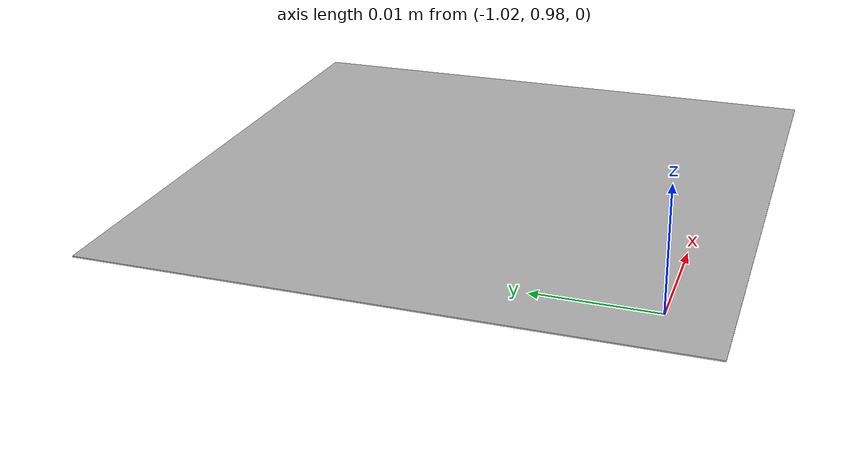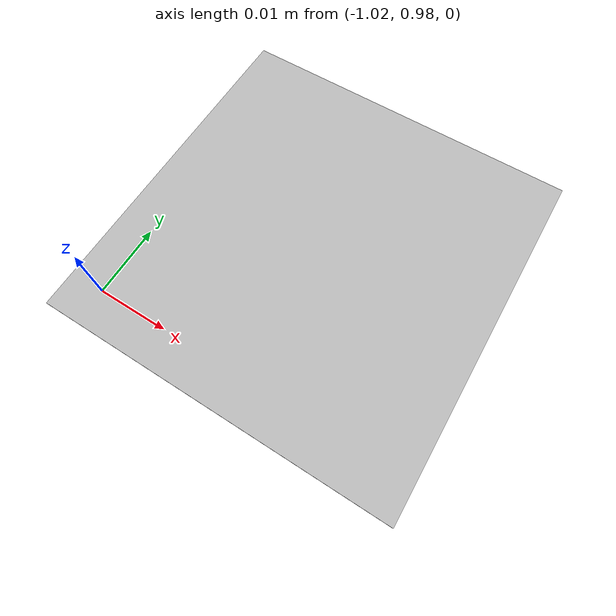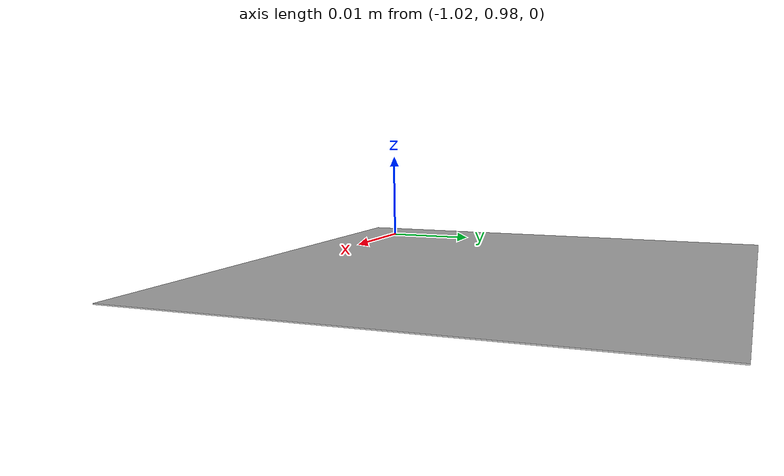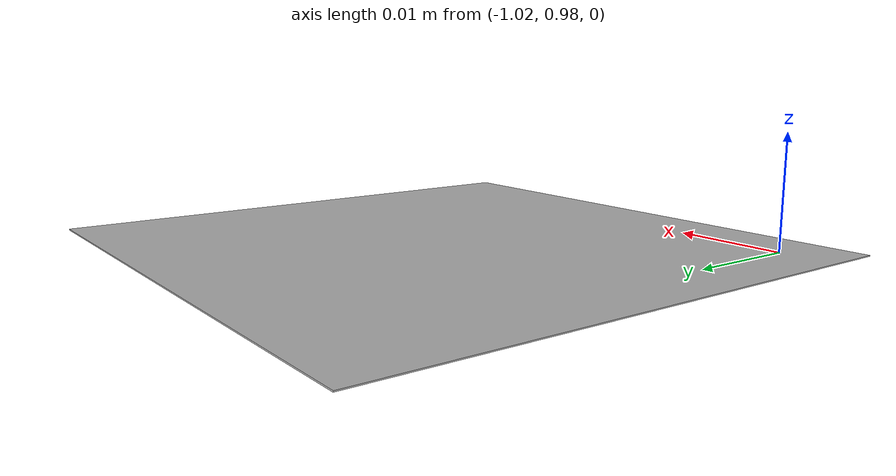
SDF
<?xml version="1.0" ?>
<sdf version="1.5">
  <model name="ar_tag_-1_1">
    <pose>-1.0 1.0 0 0 0 0</pose>
    <static>true</static>
    <link name="link">
      <collision name="collision">
        <geometry>
          <box>
            <size>0.05 0.05 .0001</size>
          </box>
        </geometry>
      </collision>
      <visual name="visual">
        <cast_shadows>false</cast_shadows>
        <geometry>
          <box>
            <size>0.05 0.05 .0001</size>
          </box>
        </geometry>
        <material>
          <script>
            <uri>model://ar_tag_-1_1/materials/scripts</uri>
            <uri>model://ar_tag_-1_1/materials/textures</uri>
            <name>ar_tag_-1_1</name>
          </script>
        </material>
      </visual>
    </link>
  </model>
</sdf>
